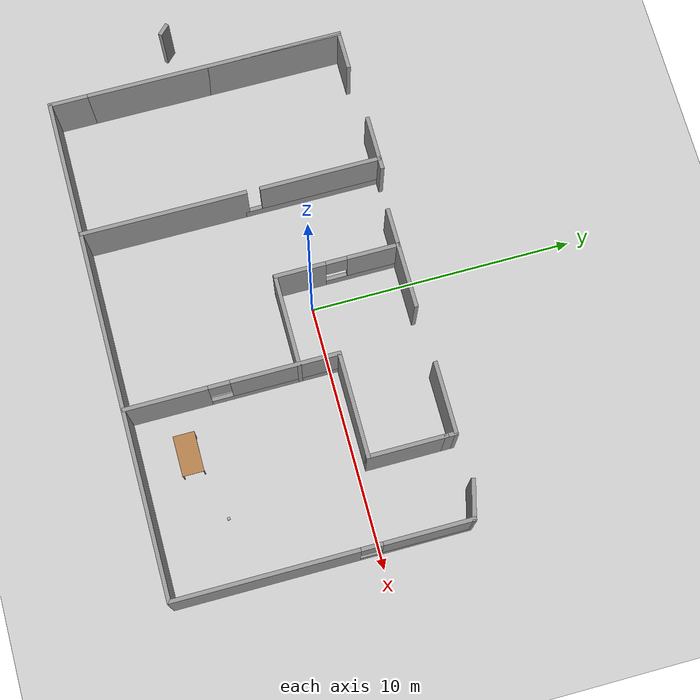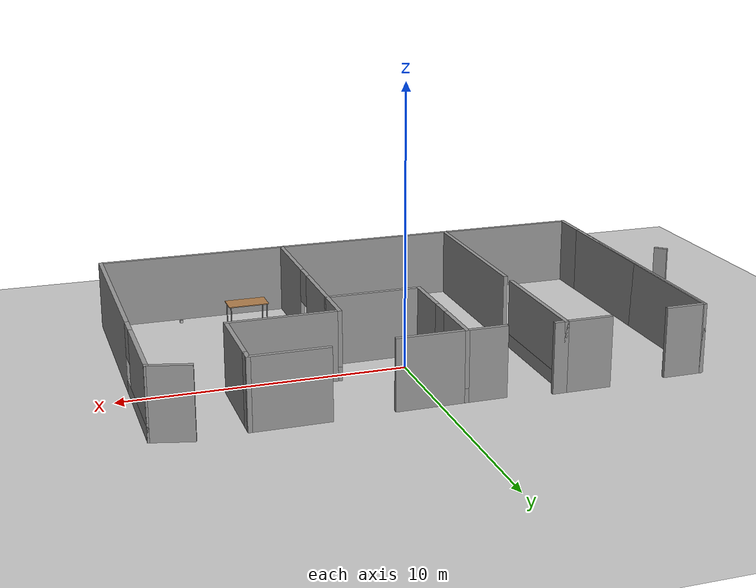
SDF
<sdf version="1.7">
 <world name="default">
  <light name="sun" type="directional">
   <pose>0 0 10 0 -0 0</pose>
   <diffuse>0.8 0.8 0.8 1</diffuse>
   <specular>0.2 0.2 0.2 1</specular>
   <attenuation>
    <range>1000</range>
    <constant>0.9</constant>
    <linear>0.01</linear>
    <quadratic>0.001</quadratic>
   </attenuation>
   <direction>-0.5 0.1 -0.9</direction>
   <spot><inner_angle>0</inner_angle><outer_angle>0</outer_angle><falloff>0</falloff></spot>
  </light>
  <model name="ground_plane">
   <static>1</static>
   <link name="link_1">
    <collision name="collision">
     <geometry><plane><normal>0 0 1</normal><size>100 100</size></plane></geometry>
     <surface>
      <contact><collide_bitmask>65535</collide_bitmask></contact>
      <friction><ode><mu>100</mu><mu2>50</mu2></ode></friction>
     </surface>
    </collision>
    <visual name="visual">
     <cast_shadows>0</cast_shadows>
     <geometry><plane><normal>0 0 1</normal><size>100 100</size></plane></geometry>
     <material>
      <script><uri>file://media/materials/scripts/gazebo.material</uri><name>Gazebo/Grey</name></script>
     </material>
    </visual>
   </link>
  </model>
  <gravity>0 0 -9.8</gravity>
  <magnetic_field>6e-06 2.3e-05 -4.2e-05</magnetic_field>
  <atmosphere type="adiabatic"/>
  <physics type="ode">
   <max_step_size>0.001</max_step_size>
   <real_time_factor>1</real_time_factor>
   <real_time_update_rate>1000</real_time_update_rate>
  </physics>
  <scene><ambient>0.4 0.4 0.4 1</ambient><background>0.7 0.7 0.7 1</background><shadows>1</shadows></scene>
  <spherical_coordinates>
   <surface_model>EARTH_WGS84</surface_model>
   <latitude_deg>0</latitude_deg>
   <longitude_deg>0</longitude_deg>
   <elevation>0</elevation>
   <heading_deg>0</heading_deg>
  </spherical_coordinates>
  <model name="my_world">
   <pose>-1.06732 -1.89607 0 0 -0 0</pose>
   <link name="Wall_1">
    <collision name="Wall_1_Collision">
     <geometry><box><size>0.5 0.15 2.5</size></box></geometry>
     <pose>0 0 1.25 0 -0 0</pose>
    </collision>
    <visual name="Wall_1_Visual">
     <pose>0 0 1.25 0 -0 0</pose>
     <geometry><box><size>0.5 0.15 2.5</size></box></geometry>
     <material>
      <script><uri>file://media/materials/scripts/gazebo.material</uri><name>Gazebo/Grey</name></script>
      <ambient>0 0 0 1</ambient>
     </material>
     <meta><layer>0</layer></meta>
    </visual>
    <pose>-10.2979 -0.834519 0 0 -0 -0.785398</pose>
   </link>
   <link name="Wall_14">
    <collision name="Wall_14_Collision">
     <geometry><box><size>6.25 0.15 2.5</size></box></geometry>
     <pose>0 0 1.25 0 -0 0</pose>
    </collision>
    <visual name="Wall_14_Visual">
     <pose>0 0 1.25 0 -0 0</pose>
     <geometry><box><size>6.25 0.15 2.5</size></box></geometry>
     <material>
      <script><uri>file://media/materials/scripts/gazebo.material</uri><name>Gazebo/Grey</name></script>
      <ambient>1 1 1 1</ambient>
     </material>
     <meta><layer>0</layer></meta>
    </visual>
    <pose>-3.20806 -2.53157 0 0 -0 1.5708</pose>
   </link>
   <link name="Wall_18">
    <pose>3.52917 -1.65657 0 0 -0 1.5708</pose>
    <visual name="Wall_18_Visual_0">
     <pose>-2.44416 0 1.25 0 -0 0</pose>
     <geometry><box><size>3.11167 0.15 2.5</size></box></geometry>
     <material>
      <script><uri>file://media/materials/scripts/gazebo.material</uri><name>Gazebo/Grey</name></script>
      <ambient>1 1 1 1</ambient>
     </material>
     <meta><layer>0</layer></meta>
    </visual>
    <collision name="Wall_18_Collision_0">
     <geometry><box><size>3.11167 0.15 2.5</size></box></geometry>
     <pose>-2.44416 0 1.25 0 -0 0</pose>
    </collision>
    <visual name="Wall_18_Visual_1">
     <pose>1.55584 0 0.25 0 -0 0</pose>
     <geometry><box><size>4.88833 0.15 0.5</size></box></geometry>
     <material>
      <script><uri>file://media/materials/scripts/gazebo.material</uri><name>Gazebo/Grey</name></script>
      <ambient>1 1 1 1</ambient>
     </material>
     <meta><layer>0</layer></meta>
    </visual>
    <collision name="Wall_18_Collision_1">
     <geometry><box><size>4.88833 0.15 0.5</size></box></geometry>
     <pose>1.55584 0 0.25 0 -0 0</pose>
    </collision>
    <visual name="Wall_18_Visual_2">
     <pose>1.95584 0 1.5 0 -0 0</pose>
     <geometry><box><size>4.08833 0.15 2</size></box></geometry>
     <material>
      <script><uri>file://media/materials/scripts/gazebo.material</uri><name>Gazebo/Grey</name></script>
      <ambient>1 1 1 1</ambient>
     </material>
     <meta><layer>0</layer></meta>
    </visual>
    <collision name="Wall_18_Collision_2">
     <geometry><box><size>4.08833 0.15 2</size></box></geometry>
     <pose>1.95584 0 1.5 0 -0 0</pose>
    </collision>
    <visual name="Wall_18_Visual_3">
     <pose>-0.488327 0 1.9 0 -0 0</pose>
     <geometry><box><size>0.8 0.15 1.2</size></box></geometry>
     <material>
      <script><uri>file://media/materials/scripts/gazebo.material</uri><name>Gazebo/Grey</name></script>
      <ambient>1 1 1 1</ambient>
     </material>
     <meta><layer>0</layer></meta>
    </visual>
    <collision name="Wall_18_Collision_3">
     <geometry><box><size>0.8 0.15 1.2</size></box></geometry>
     <pose>-0.488327 0 1.9 0 -0 0</pose>
    </collision>
   </link>
   <link name="Wall_19">
    <collision name="Wall_19_Collision">
     <geometry><box><size>4 0.15 2.5</size></box></geometry>
     <pose>0 0 1.25 0 -0 0</pose>
    </collision>
    <visual name="Wall_19_Visual">
     <pose>0 0 1.25 0 -0 0</pose>
     <geometry><box><size>4 0.15 2.5</size></box></geometry>
     <material>
      <script><uri>file://media/materials/scripts/gazebo.material</uri><name>Gazebo/Grey</name></script>
      <ambient>1 1 1 1</ambient>
     </material>
     <meta><layer>0</layer></meta>
    </visual>
    <pose>5.45418 2.26843 0 0 -0 0</pose>
   </link>
   <link name="Wall_2">
    <collision name="Wall_2_Collision">
     <geometry><box><size>9.75 0.15 2.5</size></box></geometry>
     <pose>0 0 1.25 0 -0 0</pose>
    </collision>
    <visual name="Wall_2_Visual">
     <pose>0 0 1.25 0 -0 0</pose>
     <geometry><box><size>9.75 0.15 2.5</size></box></geometry>
     <material>
      <script><uri>file://media/materials/scripts/gazebo.material</uri><name>Gazebo/Grey</name></script>
      <ambient>1 1 1 1</ambient>
     </material>
     <meta><layer>0</layer></meta>
    </visual>
    <pose>-8.41411 0.681569 0 0 -0 1.5708</pose>
   </link>
   <link name="Wall_20">
    <collision name="Wall_20_Collision">
     <geometry><box><size>3 0.15 2.5</size></box></geometry>
     <pose>0 0 1.25 0 -0 0</pose>
    </collision>
    <visual name="Wall_20_Visual">
     <pose>0 0 1.25 0 -0 0</pose>
     <geometry><box><size>3 0.15 2.5</size></box></geometry>
     <material>
      <script><uri>file://media/materials/scripts/gazebo.material</uri><name>Gazebo/Grey</name></script>
      <ambient>1 1 1 1</ambient>
     </material>
     <meta><layer>0</layer></meta>
    </visual>
    <pose>7.37918 3.69343 0 0 -0 1.5708</pose>
   </link>
   <link name="Wall_22">
    <collision name="Wall_22_Collision">
     <geometry><box><size>3.5 0.15 2.5</size></box></geometry>
     <pose>0 0 1.25 0 -0 0</pose>
    </collision>
    <visual name="Wall_22_Visual">
     <pose>0 0 1.25 0 -0 0</pose>
     <geometry><box><size>3.5 0.15 2.5</size></box></geometry>
     <material>
      <script><uri>file://media/materials/scripts/gazebo.material</uri><name>Gazebo/Grey</name></script>
      <ambient>1 1 1 1</ambient>
     </material>
     <meta><layer>0</layer></meta>
    </visual>
    <pose>1.85417 0.78138 0 0 -0 3.14159</pose>
   </link>
   <link name="Wall_23">
    <pose>0.179175 3.08138 0 0 -0 1.5708</pose>
    <visual name="Wall_23_Visual_0">
     <pose>-1.39761 0 1.25 0 -0 0</pose>
     <geometry><box><size>1.95477 0.15 2.5</size></box></geometry>
     <material>
      <script><uri>file://media/materials/scripts/gazebo.material</uri><name>Gazebo/Grey</name></script>
      <ambient>1 1 1 1</ambient>
     </material>
     <meta><layer>0</layer></meta>
    </visual>
    <collision name="Wall_23_Collision_0">
     <geometry><box><size>1.95477 0.15 2.5</size></box></geometry>
     <pose>-1.39761 0 1.25 0 -0 0</pose>
    </collision>
    <visual name="Wall_23_Visual_1">
     <pose>0.977387 0 0.25 0 -0 0</pose>
     <geometry><box><size>2.79523 0.15 0.5</size></box></geometry>
     <material>
      <script><uri>file://media/materials/scripts/gazebo.material</uri><name>Gazebo/Grey</name></script>
      <ambient>1 1 1 1</ambient>
     </material>
     <meta><layer>0</layer></meta>
    </visual>
    <collision name="Wall_23_Collision_1">
     <geometry><box><size>2.79523 0.15 0.5</size></box></geometry>
     <pose>0.977387 0 0.25 0 -0 0</pose>
    </collision>
    <visual name="Wall_23_Visual_2">
     <pose>1.37739 0 1.5 0 -0 0</pose>
     <geometry><box><size>1.99523 0.15 2</size></box></geometry>
     <material>
      <script><uri>file://media/materials/scripts/gazebo.material</uri><name>Gazebo/Grey</name></script>
      <ambient>1 1 1 1</ambient>
     </material>
     <meta><layer>0</layer></meta>
    </visual>
    <collision name="Wall_23_Collision_2">
     <geometry><box><size>1.99523 0.15 2</size></box></geometry>
     <pose>1.37739 0 1.5 0 -0 0</pose>
    </collision>
    <visual name="Wall_23_Visual_3">
     <pose>-0.020227 0 1.9 0 -0 0</pose>
     <geometry><box><size>0.8 0.15 1.2</size></box></geometry>
     <material>
      <script><uri>file://media/materials/scripts/gazebo.material</uri><name>Gazebo/Grey</name></script>
      <ambient>1 1 1 1</ambient>
     </material>
     <meta><layer>0</layer></meta>
    </visual>
    <collision name="Wall_23_Collision_3">
     <geometry><box><size>0.8 0.15 1.2</size></box></geometry>
     <pose>-0.020227 0 1.9 0 -0 0</pose>
    </collision>
   </link>
   <link name="Wall_24">
    <collision name="Wall_24_Collision">
     <geometry><box><size>2.5 0.15 2.5</size></box></geometry>
     <pose>0 0 1.25 0 -0 0</pose>
    </collision>
    <visual name="Wall_24_Visual">
     <pose>0 0 1.25 0 -0 0</pose>
     <geometry><box><size>2.5 0.15 2.5</size></box></geometry>
     <material>
      <script><uri>file://media/materials/scripts/gazebo.material</uri><name>Gazebo/Grey</name></script>
      <ambient>1 1 1 1</ambient>
     </material>
     <meta><layer>0</layer></meta>
    </visual>
    <pose>1.35417 5.38138 0 0 -0 0</pose>
   </link>
   <link name="Wall_27">
    <collision name="Wall_27_Collision">
     <geometry><box><size>0.5 0.15 2.5</size></box></geometry>
     <pose>0 0 1.25 0 -0 0</pose>
    </collision>
    <visual name="Wall_27_Visual">
     <pose>0 0 1.25 0 -0 0</pose>
     <geometry><box><size>0.5 0.15 2.5</size></box></geometry>
     <material>
      <script><uri>file://media/materials/scripts/gazebo.material</uri><name>Gazebo/Grey</name></script>
      <ambient>1 1 1 1</ambient>
     </material>
     <meta><layer>0</layer></meta>
    </visual>
    <pose>7.37918 5.29343 0 0 -0 1.5708</pose>
   </link>
   <link name="Wall_28">
    <collision name="Wall_28_Collision">
     <geometry><box><size>2.75 0.15 2.5</size></box></geometry>
     <pose>0 0 1.25 0 -0 0</pose>
    </collision>
    <visual name="Wall_28_Visual">
     <pose>0 0 1.25 0 -0 0</pose>
     <geometry><box><size>2.75 0.15 2.5</size></box></geometry>
     <material>
      <script><uri>file://media/materials/scripts/gazebo.material</uri><name>Gazebo/Grey</name></script>
      <ambient>1 1 1 1</ambient>
     </material>
     <meta><layer>0</layer></meta>
    </visual>
    <pose>6.07918 5.46843 0 0 -0 3.14159</pose>
   </link>
   <link name="Wall_3">
    <collision name="Wall_3_Collision">
     <geometry><box><size>11.25 0.15 2.5</size></box></geometry>
     <pose>0 0 1.25 0 -0 0</pose>
    </collision>
    <visual name="Wall_3_Visual">
     <pose>0 0 1.25 0 -0 0</pose>
     <geometry><box><size>11.25 0.15 2.5</size></box></geometry>
     <material>
      <script><uri>file://media/materials/scripts/gazebo.material</uri><name>Gazebo/Grey</name></script>
      <ambient>1 1 1 1</ambient>
     </material>
     <meta><layer>0</layer></meta>
    </visual>
    <pose>-8.41411 -0.068431 0 0 -0 -1.5708</pose>
   </link>
   <link name="Wall_30">
    <pose>-3.20806 3.06843 0 0 -0 1.5708</pose>
    <visual name="Wall_30_Visual_0">
     <pose>0 0 0.25 0 -0 0</pose>
     <geometry><box><size>5.25 0.15 0.5</size></box></geometry>
     <material>
      <script><uri>file://media/materials/scripts/gazebo.material</uri><name>Gazebo/Grey</name></script>
      <ambient>1 1 1 1</ambient>
     </material>
     <meta><layer>0</layer></meta>
    </visual>
    <collision name="Wall_30_Collision_0">
     <geometry><box><size>5.25 0.15 0.5</size></box></geometry>
     <pose>0 0 0.25 0 -0 0</pose>
    </collision>
    <visual name="Wall_30_Visual_1">
     <pose>0.317935 0 1.5 0 -0 0</pose>
     <geometry><box><size>4.61413 0.15 2</size></box></geometry>
     <material>
      <script><uri>file://media/materials/scripts/gazebo.material</uri><name>Gazebo/Grey</name></script>
      <ambient>1 1 1 1</ambient>
     </material>
     <meta><layer>0</layer></meta>
    </visual>
    <collision name="Wall_30_Collision_1">
     <geometry><box><size>4.61413 0.15 2</size></box></geometry>
     <pose>0.317935 0 1.5 0 -0 0</pose>
    </collision>
   </link>
   <link name="Wall_31">
    <collision name="Wall_31_Collision">
     <geometry><box><size>1.75 0.15 2.5</size></box></geometry>
     <pose>0 0 1.25 0 -0 0</pose>
    </collision>
    <visual name="Wall_31_Visual">
     <pose>0 0 1.25 0 -0 0</pose>
     <geometry><box><size>1.75 0.15 2.5</size></box></geometry>
     <material>
      <script><uri>file://media/materials/scripts/gazebo.material</uri><name>Gazebo/Grey</name></script>
      <ambient>1 1 1 1</ambient>
     </material>
     <meta><layer>0</layer></meta>
    </visual>
    <pose>-4.00807 5.61843 0 0 -0 3.14159</pose>
   </link>
   <link name="Wall_33">
    <collision name="Wall_33_Collision">
     <geometry><box><size>1.5 0.15 2.5</size></box></geometry>
     <pose>0 0 1.25 0 -0 0</pose>
    </collision>
    <visual name="Wall_33_Visual">
     <pose>0 0 1.25 0 -0 0</pose>
     <geometry><box><size>1.5 0.15 2.5</size></box></geometry>
     <material>
      <script><uri>file://media/materials/scripts/gazebo.material</uri><name>Gazebo/Grey</name></script>
      <ambient>1 1 1 1</ambient>
     </material>
     <meta><layer>0</layer></meta>
    </visual>
    <pose>-7.73911 5.48157 0 0 -0 0</pose>
   </link>
   <link name="Wall_35">
    <collision name="Wall_35_Collision">
     <geometry><box><size>0.15 0.15 2.5</size></box></geometry>
     <pose>0 0 1.25 0 -0 0</pose>
    </collision>
    <visual name="Wall_35_Visual">
     <pose>0 0 1.25 0 -0 0</pose>
     <geometry><box><size>0.15 0.15 2.5</size></box></geometry>
     <material>
      <script><uri>file://media/materials/scripts/gazebo.material</uri><name>Gazebo/Grey</name></script>
      <ambient>1 1 1 1</ambient>
     </material>
     <meta><layer>0</layer></meta>
    </visual>
    <pose>10.4359 5.23157 0 0 -0 0</pose>
   </link>
   <link name="Wall_36">
    <collision name="Wall_36_Collision">
     <geometry><box><size>1.5 0.15 2.5</size></box></geometry>
     <pose>0 0 1.25 0 -0 0</pose>
    </collision>
    <visual name="Wall_36_Visual">
     <pose>0 0 1.25 0 -0 0</pose>
     <geometry><box><size>1.5 0.15 2.5</size></box></geometry>
     <material>
      <script><uri>file://media/materials/scripts/gazebo.material</uri><name>Gazebo/Grey</name></script>
      <ambient>1 1 1 1</ambient>
     </material>
     <meta><layer>0</layer></meta>
    </visual>
    <pose>9.78389 5.40627 0 0 -0 2.87979</pose>
   </link>
   <link name="Wall_38">
    <collision name="Wall_38_Collision">
     <geometry><box><size>0.5 0.15 2.5</size></box></geometry>
     <pose>0 0 1.25 0 -0 0</pose>
    </collision>
    <visual name="Wall_38_Visual">
     <pose>0 0 1.25 0 -0 0</pose>
     <geometry><box><size>0.5 0.15 2.5</size></box></geometry>
     <material>
      <script><uri>file://media/materials/scripts/gazebo.material</uri><name>Gazebo/Grey</name></script>
      <ambient>1 1 1 1</ambient>
     </material>
     <meta><layer>0</layer></meta>
    </visual>
    <pose>-3.03307 5.61843 0 0 -0 0</pose>
   </link>
   <link name="Wall_4">
    <collision name="Wall_4_Collision">
     <geometry><box><size>19 0.15 2.5</size></box></geometry>
     <pose>0 0 1.25 0 -0 0</pose>
    </collision>
    <visual name="Wall_4_Visual">
     <pose>0 0 1.25 0 -0 0</pose>
     <geometry><box><size>19 0.15 2.5</size></box></geometry>
     <material>
      <script><uri>file://media/materials/scripts/gazebo.material</uri><name>Gazebo/Grey</name></script>
      <ambient>1 1 1 1</ambient>
     </material>
     <meta><layer>0</layer></meta>
    </visual>
    <pose>1.01089 -5.61843 0 0 -0 0</pose>
   </link>
   <link name="Wall_40">
    <collision name="Wall_40_Collision">
     <geometry><box><size>1.5 0.15 2.5</size></box></geometry>
     <pose>0 0 1.25 0 -0 0</pose>
    </collision>
    <visual name="Wall_40_Visual">
     <pose>0 0 1.25 0 -0 0</pose>
     <geometry><box><size>1.5 0.15 2.5</size></box></geometry>
     <material>
      <script><uri>file://media/materials/scripts/gazebo.material</uri><name>Gazebo/Grey</name></script>
      <ambient>1 1 1 1</ambient>
     </material>
     <meta><layer>0</layer></meta>
    </visual>
    <pose>-0.495825 5.38138 0 0 -0 3.14159</pose>
   </link>
   <link name="Wall_5">
    <pose>10.4359 -0.193431 0 0 -0 1.5708</pose>
    <visual name="Wall_5_Visual_0">
     <pose>-2.07129 0 1.25 0 -0 0</pose>
     <geometry><box><size>6.85742 0.15 2.5</size></box></geometry>
     <material>
      <script><uri>file://media/materials/scripts/gazebo.material</uri><name>Gazebo/Grey</name></script>
      <ambient>1 1 1 1</ambient>
     </material>
     <meta><layer>0</layer></meta>
    </visual>
    <collision name="Wall_5_Collision_0">
     <geometry><box><size>6.85742 0.15 2.5</size></box></geometry>
     <pose>-2.07129 0 1.25 0 -0 0</pose>
    </collision>
    <visual name="Wall_5_Visual_1">
     <pose>3.42871 0 0.25 0 -0 0</pose>
     <geometry><box><size>4.14258 0.15 0.5</size></box></geometry>
     <material>
      <script><uri>file://media/materials/scripts/gazebo.material</uri><name>Gazebo/Grey</name></script>
      <ambient>1 1 1 1</ambient>
     </material>
     <meta><layer>0</layer></meta>
    </visual>
    <collision name="Wall_5_Collision_1">
     <geometry><box><size>4.14258 0.15 0.5</size></box></geometry>
     <pose>3.42871 0 0.25 0 -0 0</pose>
    </collision>
    <visual name="Wall_5_Visual_2">
     <pose>3.82871 0 1.5 0 -0 0</pose>
     <geometry><box><size>3.34258 0.15 2</size></box></geometry>
     <material>
      <script><uri>file://media/materials/scripts/gazebo.material</uri><name>Gazebo/Grey</name></script>
      <ambient>1 1 1 1</ambient>
     </material>
     <meta><layer>0</layer></meta>
    </visual>
    <collision name="Wall_5_Collision_2">
     <geometry><box><size>3.34258 0.15 2</size></box></geometry>
     <pose>3.82871 0 1.5 0 -0 0</pose>
    </collision>
    <visual name="Wall_5_Visual_3">
     <pose>1.75742 0 1.9 0 -0 0</pose>
     <geometry><box><size>0.8 0.15 1.2</size></box></geometry>
     <material>
      <script><uri>file://media/materials/scripts/gazebo.material</uri><name>Gazebo/Grey</name></script>
      <ambient>1 1 1 1</ambient>
     </material>
     <meta><layer>0</layer></meta>
    </visual>
    <collision name="Wall_5_Collision_3">
     <geometry><box><size>0.8 0.15 1.2</size></box></geometry>
     <pose>1.75742 0 1.9 0 -0 0</pose>
    </collision>
   </link>
   <static>1</static>
  </model>
  <model name="table">
   <static>1</static>
   <link name="link">
    <collision name="surface">
     <pose>0 0 1 0 -0 0</pose>
     <geometry><box><size>1.5 0.8 0.03</size></box></geometry>
     <surface><friction><ode><mu>0.6</mu><mu2>0.6</mu2></ode></friction></surface>
    </collision>
    <visual name="visual1">
     <pose>0 0 1 0 -0 0</pose>
     <geometry><box><size>1.5 0.8 0.03</size></box></geometry>
     <material>
      <script><uri>file://media/materials/scripts/gazebo.material</uri><name>Gazebo/Wood</name></script>
     </material>
    </visual>
    <collision name="front_left_leg">
     <pose>0.68 0.38 0.5 0 -0 0</pose>
     <geometry><cylinder><radius>0.02</radius><length>1</length></cylinder></geometry>
    </collision>
    <visual name="front_left_leg">
     <pose>0.68 0.38 0.5 0 -0 0</pose>
     <geometry><cylinder><radius>0.02</radius><length>1</length></cylinder></geometry>
     <material>
      <script><uri>file://media/materials/scripts/gazebo.material</uri><name>Gazebo/Grey</name></script>
     </material>
    </visual>
    <collision name="front_right_leg">
     <pose>0.68 -0.38 0.5 0 -0 0</pose>
     <geometry><cylinder><radius>0.02</radius><length>1</length></cylinder></geometry>
    </collision>
    <visual name="front_right_leg">
     <pose>0.68 -0.38 0.5 0 -0 0</pose>
     <geometry><cylinder><radius>0.02</radius><length>1</length></cylinder></geometry>
     <material>
      <script><uri>file://media/materials/scripts/gazebo.material</uri><name>Gazebo/Grey</name></script>
     </material>
    </visual>
    <collision name="back_right_leg">
     <pose>-0.68 -0.38 0.5 0 -0 0</pose>
     <geometry><cylinder><radius>0.02</radius><length>1</length></cylinder></geometry>
    </collision>
    <visual name="back_right_leg">
     <pose>-0.68 -0.38 0.5 0 -0 0</pose>
     <geometry><cylinder><radius>0.02</radius><length>1</length></cylinder></geometry>
     <material>
      <script><uri>file://media/materials/scripts/gazebo.material</uri><name>Gazebo/Grey</name></script>
     </material>
    </visual>
    <collision name="back_left_leg">
     <pose>-0.68 0.38 0.5 0 -0 0</pose>
     <geometry><cylinder><radius>0.02</radius><length>1</length></cylinder></geometry>
    </collision>
    <visual name="back_left_leg">
     <pose>-0.68 0.38 0.5 0 -0 0</pose>
     <geometry><cylinder><radius>0.02</radius><length>1</length></cylinder></geometry>
     <material>
      <script><uri>file://media/materials/scripts/gazebo.material</uri><name>Gazebo/Grey</name></script>
     </material>
    </visual>
   </link>
   <pose>4.28456 -5.72184 0 0 -0 0</pose>
  </model>
  <model name="depth_camera">
   <link name="link">
    <pose>0 0 0.05 0 -0 0</pose>
    <inertial>
     <mass>0.1</mass>
     <inertia>
      <ixx>0.000166667</ixx>
      <iyy>0.000166667</iyy>
      <izz>0.000166667</izz>
      <ixy>0</ixy>
      <ixz>0</ixz>
      <iyz>0</iyz>
     </inertia>
    </inertial>
    <collision name="collision"><geometry><box><size>0.1 0.1 0.1</size></box></geometry></collision>
    <visual name="visual"><geometry><box><size>0.1 0.1 0.1</size></box></geometry></visual>
    <sensor name="camera" type="depth">
     <camera>
      <horizontal_fov>1.047</horizontal_fov>
      <image><width>320</width><height>240</height></image>
      <clip><near>0.1</near><far>100</far></clip>
     </camera>
     <always_on>1</always_on>
     <update_rate>30</update_rate>
     <visualize>1</visualize>
    </sensor>
   </link>
   <pose>6.89442 -4.89755 0.775 0 -0 0</pose>
  </model>
 </world>
</sdf>
